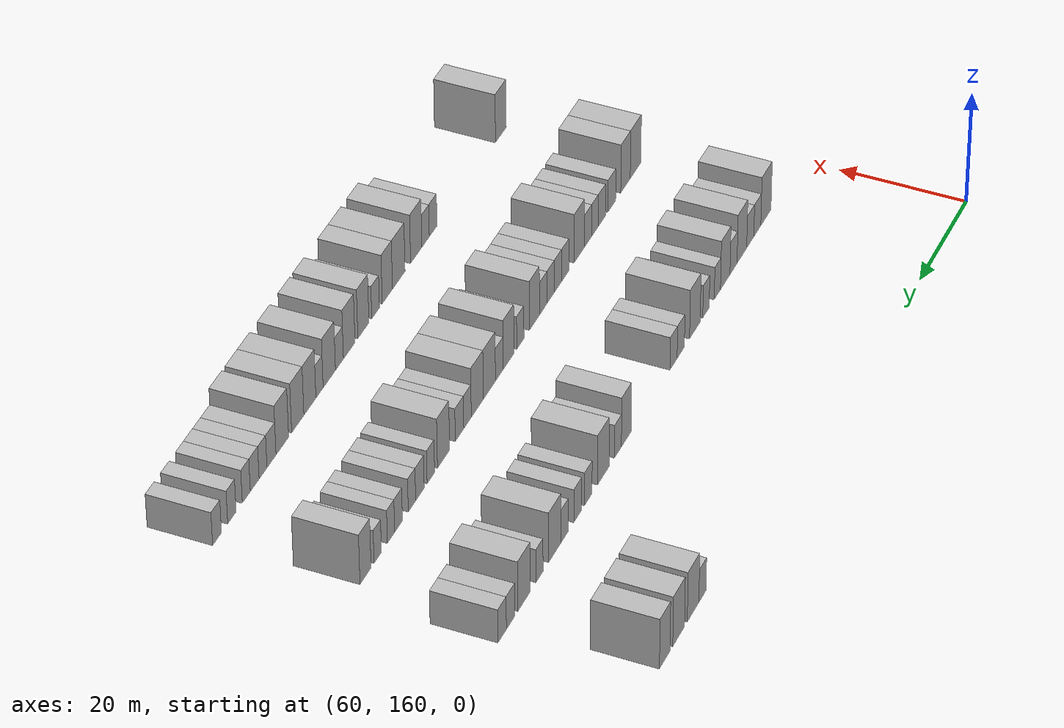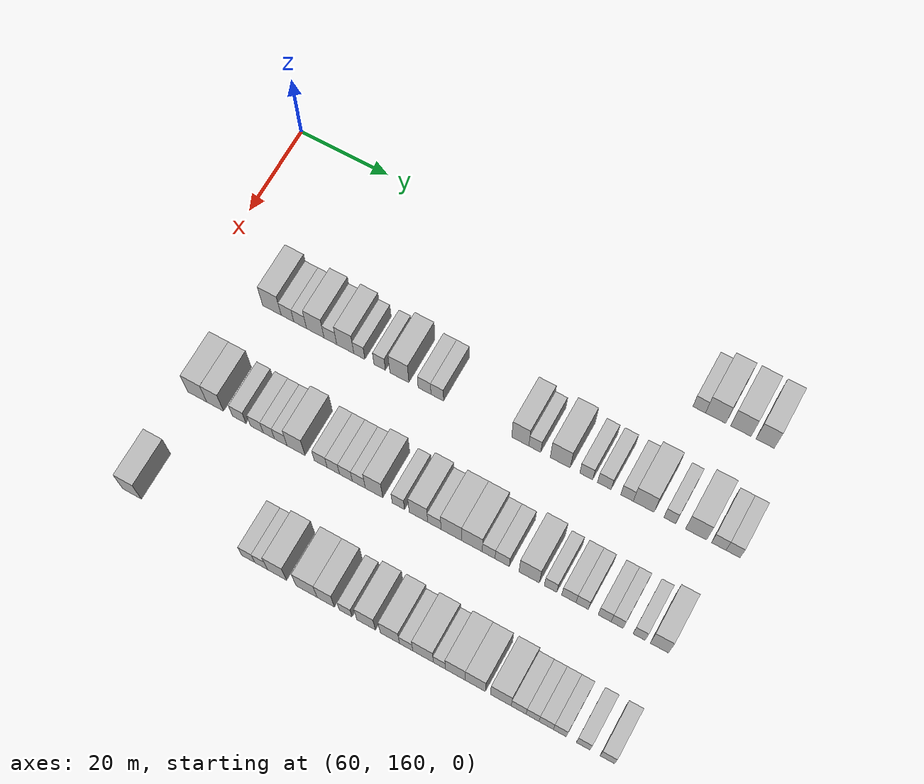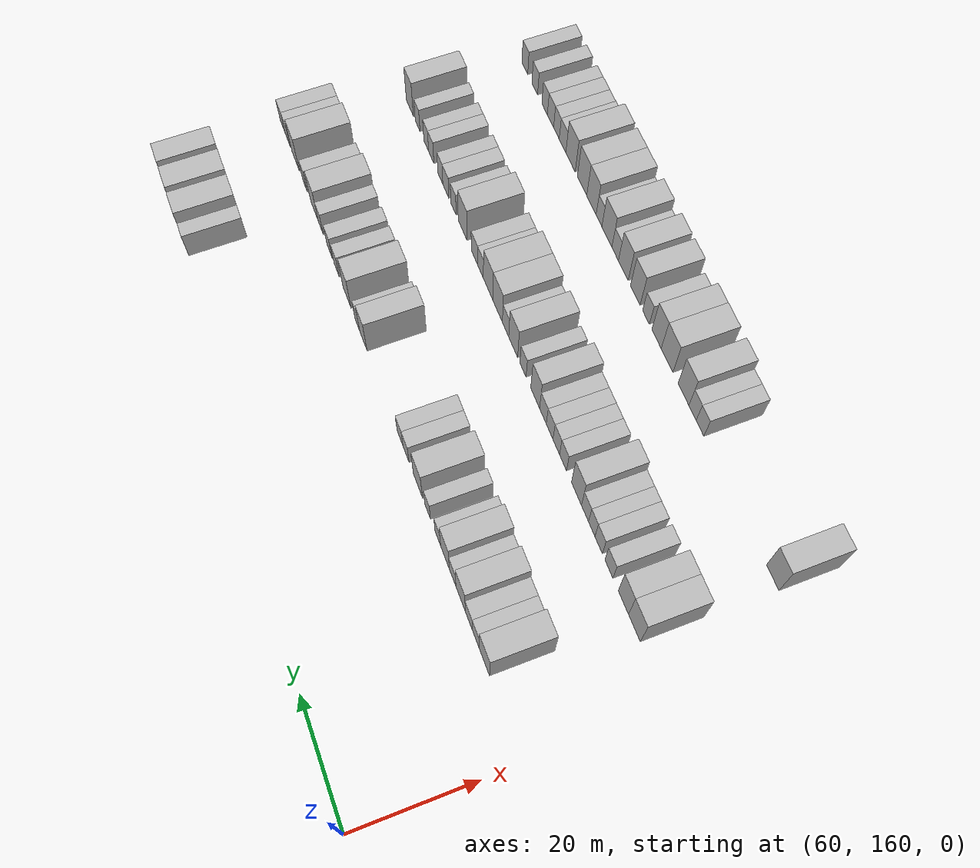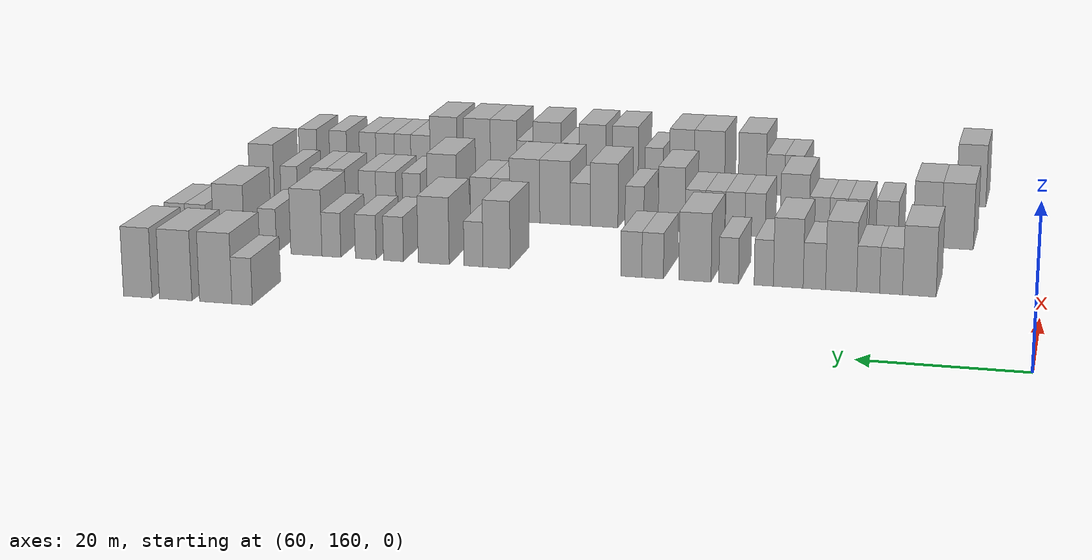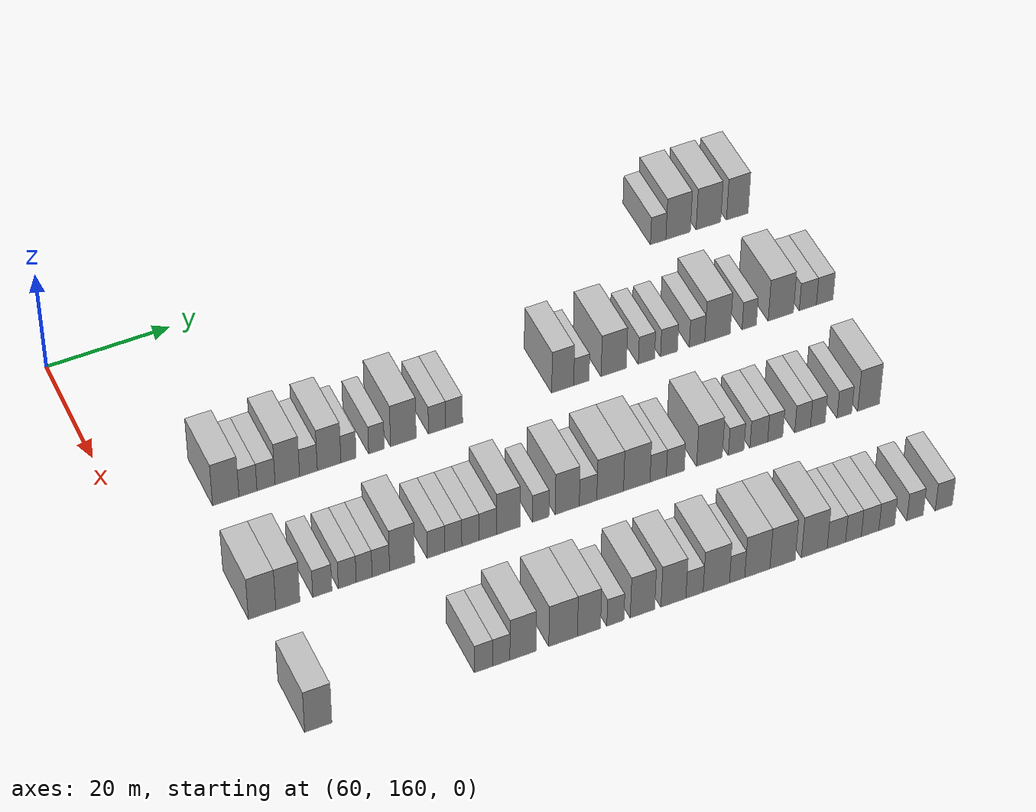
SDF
<sdf version="1.6">
 <world name="default">
  <model name="building_533">
   <static>1</static>
   <pose>69.0000 255.9101 0 0.000000 0.000000 0.000000</pose>
   <link name="link">
    <pose>0 0 3.00 0 0 0</pose>
    <collision name="collision"><geometry><box><size>10.0000 2.6577 6.0000</size></box></geometry></collision>
    <visual name="visual">
     <cast_shadows>0</cast_shadows>
     <geometry><box><size>10.0000 2.6577 6.0000</size></box></geometry>
     <material>
      <script>
       <uri>model://HANNAS_wall/materials/scripts</uri>
       <uri>model://HANNAS_wall/materials/textures</uri>
       <name>vrc/HANNAS_wall</name>
      </script>
     </material>
    </visual>
   </link>
  </model>
  <model name="building_534">
   <static>1</static>
   <pose>69.0000 259.3615 0 0.000000 0.000000 0.000000</pose>
   <link name="link">
    <pose>0 0 4.50 0 0 0</pose>
    <collision name="collision"><geometry><box><size>10.0000 4.2451 9.0000</size></box></geometry></collision>
    <visual name="visual">
     <cast_shadows>0</cast_shadows>
     <geometry><box><size>10.0000 4.2451 9.0000</size></box></geometry>
     <material>
      <script>
       <uri>model://HANNAS_wall/materials/scripts</uri>
       <uri>model://HANNAS_wall/materials/textures</uri>
       <name>vrc/HANNAS_wall</name>
      </script>
     </material>
    </visual>
   </link>
  </model>
  <model name="building_535">
   <static>1</static>
   <pose>69.0000 264.6245 0 0.000000 0.000000 0.000000</pose>
   <link name="link">
    <pose>0 0 4.50 0 0 0</pose>
    <collision name="collision"><geometry><box><size>10.0000 4.2810 9.0000</size></box></geometry></collision>
    <visual name="visual">
     <cast_shadows>0</cast_shadows>
     <geometry><box><size>10.0000 4.2810 9.0000</size></box></geometry>
     <material>
      <script>
       <uri>model://HANNAS_wall/materials/scripts</uri>
       <uri>model://HANNAS_wall/materials/textures</uri>
       <name>vrc/HANNAS_wall</name>
      </script>
     </material>
    </visual>
   </link>
  </model>
  <model name="building_536">
   <static>1</static>
   <pose>69.0000 269.6585 0 0.000000 0.000000 0.000000</pose>
   <link name="link">
    <pose>0 0 4.50 0 0 0</pose>
    <collision name="collision"><geometry><box><size>10.0000 3.7870 9.0000</size></box></geometry></collision>
    <visual name="visual">
     <cast_shadows>0</cast_shadows>
     <geometry><box><size>10.0000 3.7870 9.0000</size></box></geometry>
     <material>
      <script>
       <uri>model://HANNAS_wall/materials/scripts</uri>
       <uri>model://HANNAS_wall/materials/textures</uri>
       <name>vrc/HANNAS_wall</name>
      </script>
     </material>
    </visual>
   </link>
  </model>
  <model name="building_705">
   <static>1</static>
   <pose>91.0000 174.9958 0 0.000000 0.000000 0.000000</pose>
   <link name="link">
    <pose>0 0 4.50 0 0 0</pose>
    <collision name="collision"><geometry><box><size>10.0000 4.1649 9.0000</size></box></geometry></collision>
    <visual name="visual">
     <cast_shadows>0</cast_shadows>
     <geometry><box><size>10.0000 4.1649 9.0000</size></box></geometry>
     <material>
      <script>
       <uri>model://HANNAS_wall/materials/scripts</uri>
       <uri>model://HANNAS_wall/materials/textures</uri>
       <name>vrc/HANNAS_wall</name>
      </script>
     </material>
    </visual>
   </link>
  </model>
  <model name="building_706">
   <static>1</static>
   <pose>91.0000 178.5038 0 0.000000 0.000000 0.000000</pose>
   <link name="link">
    <pose>0 0 3.00 0 0 0</pose>
    <collision name="collision"><geometry><box><size>10.0000 2.8511 6.0000</size></box></geometry></collision>
    <visual name="visual">
     <cast_shadows>0</cast_shadows>
     <geometry><box><size>10.0000 2.8511 6.0000</size></box></geometry>
     <material>
      <script>
       <uri>model://HANNAS_wall/materials/scripts</uri>
       <uri>model://HANNAS_wall/materials/textures</uri>
       <name>vrc/HANNAS_wall</name>
      </script>
     </material>
    </visual>
   </link>
  </model>
  <model name="building_707">
   <static>1</static>
   <pose>91.0000 181.3658 0 0.000000 0.000000 0.000000</pose>
   <link name="link">
    <pose>0 0 3.00 0 0 0</pose>
    <collision name="collision"><geometry><box><size>10.0000 2.8729 6.0000</size></box></geometry></collision>
    <visual name="visual">
     <cast_shadows>0</cast_shadows>
     <geometry><box><size>10.0000 2.8729 6.0000</size></box></geometry>
     <material>
      <script>
       <uri>model://HANNAS_wall/materials/scripts</uri>
       <uri>model://HANNAS_wall/materials/textures</uri>
       <name>vrc/HANNAS_wall</name>
      </script>
     </material>
    </visual>
   </link>
  </model>
  <model name="building_708">
   <static>1</static>
   <pose>91.0000 184.7494 0 0.000000 0.000000 0.000000</pose>
   <link name="link">
    <pose>0 0 4.50 0 0 0</pose>
    <collision name="collision"><geometry><box><size>10.0000 3.8943 9.0000</size></box></geometry></collision>
    <visual name="visual">
     <cast_shadows>0</cast_shadows>
     <geometry><box><size>10.0000 3.8943 9.0000</size></box></geometry>
     <material>
      <script>
       <uri>model://HANNAS_wall/materials/scripts</uri>
       <uri>model://HANNAS_wall/materials/textures</uri>
       <name>vrc/HANNAS_wall</name>
      </script>
     </material>
    </visual>
   </link>
  </model>
  <model name="building_709">
   <static>1</static>
   <pose>91.0000 188.1133 0 0.000000 0.000000 0.000000</pose>
   <link name="link">
    <pose>0 0 3.00 0 0 0</pose>
    <collision name="collision"><geometry><box><size>10.0000 2.8335 6.0000</size></box></geometry></collision>
    <visual name="visual">
     <cast_shadows>0</cast_shadows>
     <geometry><box><size>10.0000 2.8335 6.0000</size></box></geometry>
     <material>
      <script>
       <uri>model://HANNAS_wall/materials/scripts</uri>
       <uri>model://HANNAS_wall/materials/textures</uri>
       <name>vrc/HANNAS_wall</name>
      </script>
     </material>
    </visual>
   </link>
  </model>
  <model name="building_710">
   <static>1</static>
   <pose>91.0000 191.4170 0 0.000000 0.000000 0.000000</pose>
   <link name="link">
    <pose>0 0 4.50 0 0 0</pose>
    <collision name="collision"><geometry><box><size>10.0000 3.7739 9.0000</size></box></geometry></collision>
    <visual name="visual">
     <cast_shadows>0</cast_shadows>
     <geometry><box><size>10.0000 3.7739 9.0000</size></box></geometry>
     <material>
      <script>
       <uri>model://HANNAS_wall/materials/scripts</uri>
       <uri>model://HANNAS_wall/materials/textures</uri>
       <name>vrc/HANNAS_wall</name>
      </script>
     </material>
    </visual>
   </link>
  </model>
  <model name="building_711">
   <static>1</static>
   <pose>91.0000 194.5277 0 0.000000 0.000000 0.000000</pose>
   <link name="link">
    <pose>0 0 3.00 0 0 0</pose>
    <collision name="collision"><geometry><box><size>10.0000 2.4475 6.0000</size></box></geometry></collision>
    <visual name="visual">
     <cast_shadows>0</cast_shadows>
     <geometry><box><size>10.0000 2.4475 6.0000</size></box></geometry>
     <material>
      <script>
       <uri>model://HANNAS_wall/materials/scripts</uri>
       <uri>model://HANNAS_wall/materials/textures</uri>
       <name>vrc/HANNAS_wall</name>
      </script>
     </material>
    </visual>
   </link>
  </model>
  <model name="building_712">
   <static>1</static>
   <pose>91.0000 199.0135 0 0.000000 0.000000 0.000000</pose>
   <link name="link">
    <pose>0 0 3.00 0 0 0</pose>
    <collision name="collision"><geometry><box><size>10.0000 2.5241 6.0000</size></box></geometry></collision>
    <visual name="visual">
     <cast_shadows>0</cast_shadows>
     <geometry><box><size>10.0000 2.5241 6.0000</size></box></geometry>
     <material>
      <script>
       <uri>model://HANNAS_wall/materials/scripts</uri>
       <uri>model://HANNAS_wall/materials/textures</uri>
       <name>vrc/HANNAS_wall</name>
      </script>
     </material>
    </visual>
   </link>
  </model>
  <model name="building_713">
   <static>1</static>
   <pose>91.0000 203.3489 0 0.000000 0.000000 0.000000</pose>
   <link name="link">
    <pose>0 0 4.50 0 0 0</pose>
    <collision name="collision"><geometry><box><size>10.0000 4.1468 9.0000</size></box></geometry></collision>
    <visual name="visual">
     <cast_shadows>0</cast_shadows>
     <geometry><box><size>10.0000 4.1468 9.0000</size></box></geometry>
     <material>
      <script>
       <uri>model://HANNAS_wall/materials/scripts</uri>
       <uri>model://HANNAS_wall/materials/textures</uri>
       <name>vrc/HANNAS_wall</name>
      </script>
     </material>
    </visual>
   </link>
  </model>
  <model name="building_714">
   <static>1</static>
   <pose>91.0000 208.8238 0 0.000000 0.000000 0.000000</pose>
   <link name="link">
    <pose>0 0 3.00 0 0 0</pose>
    <collision name="collision"><geometry><box><size>10.0000 2.8030 6.0000</size></box></geometry></collision>
    <visual name="visual">
     <cast_shadows>0</cast_shadows>
     <geometry><box><size>10.0000 2.8030 6.0000</size></box></geometry>
     <material>
      <script>
       <uri>model://HANNAS_wall/materials/scripts</uri>
       <uri>model://HANNAS_wall/materials/textures</uri>
       <name>vrc/HANNAS_wall</name>
      </script>
     </material>
    </visual>
   </link>
  </model>
  <model name="building_715">
   <static>1</static>
   <pose>91.0000 211.6003 0 0.000000 0.000000 0.000000</pose>
   <link name="link">
    <pose>0 0 3.00 0 0 0</pose>
    <collision name="collision"><geometry><box><size>10.0000 2.7498 6.0000</size></box></geometry></collision>
    <visual name="visual">
     <cast_shadows>0</cast_shadows>
     <geometry><box><size>10.0000 2.7498 6.0000</size></box></geometry>
     <material>
      <script>
       <uri>model://HANNAS_wall/materials/scripts</uri>
       <uri>model://HANNAS_wall/materials/textures</uri>
       <name>vrc/HANNAS_wall</name>
      </script>
     </material>
    </visual>
   </link>
  </model>
  <model name="building_716">
   <static>1</static>
   <pose>91.0000 229.4431 0 0.000000 0.000000 0.000000</pose>
   <link name="link">
    <pose>0 0 4.50 0 0 0</pose>
    <collision name="collision"><geometry><box><size>10.0000 3.6453 9.0000</size></box></geometry></collision>
    <visual name="visual">
     <cast_shadows>0</cast_shadows>
     <geometry><box><size>10.0000 3.6453 9.0000</size></box></geometry>
     <material>
      <script>
       <uri>model://HANNAS_wall/materials/scripts</uri>
       <uri>model://HANNAS_wall/materials/textures</uri>
       <name>vrc/HANNAS_wall</name>
      </script>
     </material>
    </visual>
   </link>
  </model>
  <model name="building_717">
   <static>1</static>
   <pose>91.0000 232.5391 0 0.000000 0.000000 0.000000</pose>
   <link name="link">
    <pose>0 0 3.00 0 0 0</pose>
    <collision name="collision"><geometry><box><size>10.0000 2.5468 6.0000</size></box></geometry></collision>
    <visual name="visual">
     <cast_shadows>0</cast_shadows>
     <geometry><box><size>10.0000 2.5468 6.0000</size></box></geometry>
     <material>
      <script>
       <uri>model://HANNAS_wall/materials/scripts</uri>
       <uri>model://HANNAS_wall/materials/textures</uri>
       <name>vrc/HANNAS_wall</name>
      </script>
     </material>
    </visual>
   </link>
  </model>
  <model name="building_718">
   <static>1</static>
   <pose>91.0000 237.9190 0 0.000000 0.000000 0.000000</pose>
   <link name="link">
    <pose>0 0 4.50 0 0 0</pose>
    <collision name="collision"><geometry><box><size>10.0000 4.2130 9.0000</size></box></geometry></collision>
    <visual name="visual">
     <cast_shadows>0</cast_shadows>
     <geometry><box><size>10.0000 4.2130 9.0000</size></box></geometry>
     <material>
      <script>
       <uri>model://HANNAS_wall/materials/scripts</uri>
       <uri>model://HANNAS_wall/materials/textures</uri>
       <name>vrc/HANNAS_wall</name>
      </script>
     </material>
    </visual>
   </link>
  </model>
  <model name="building_719">
   <static>1</static>
   <pose>91.0000 243.3892 0 0.000000 0.000000 0.000000</pose>
   <link name="link">
    <pose>0 0 3.00 0 0 0</pose>
    <collision name="collision"><geometry><box><size>10.0000 2.7273 6.0000</size></box></geometry></collision>
    <visual name="visual">
     <cast_shadows>0</cast_shadows>
     <geometry><box><size>10.0000 2.7273 6.0000</size></box></geometry>
     <material>
      <script>
       <uri>model://HANNAS_wall/materials/scripts</uri>
       <uri>model://HANNAS_wall/materials/textures</uri>
       <name>vrc/HANNAS_wall</name>
      </script>
     </material>
    </visual>
   </link>
  </model>
  <model name="building_720">
   <static>1</static>
   <pose>91.0000 247.1819 0 0.000000 0.000000 0.000000</pose>
   <link name="link">
    <pose>0 0 3.00 0 0 0</pose>
    <collision name="collision"><geometry><box><size>10.0000 2.8580 6.0000</size></box></geometry></collision>
    <visual name="visual">
     <cast_shadows>0</cast_shadows>
     <geometry><box><size>10.0000 2.8580 6.0000</size></box></geometry>
     <material>
      <script>
       <uri>model://HANNAS_wall/materials/scripts</uri>
       <uri>model://HANNAS_wall/materials/textures</uri>
       <name>vrc/HANNAS_wall</name>
      </script>
     </material>
    </visual>
   </link>
  </model>
  <model name="building_721">
   <static>1</static>
   <pose>91.0000 251.9190 0 0.000000 0.000000 0.000000</pose>
   <link name="link">
    <pose>0 0 3.00 0 0 0</pose>
    <collision name="collision"><geometry><box><size>10.0000 2.6163 6.0000</size></box></geometry></collision>
    <visual name="visual">
     <cast_shadows>0</cast_shadows>
     <geometry><box><size>10.0000 2.6163 6.0000</size></box></geometry>
     <material>
      <script>
       <uri>model://HANNAS_wall/materials/scripts</uri>
       <uri>model://HANNAS_wall/materials/textures</uri>
       <name>vrc/HANNAS_wall</name>
      </script>
     </material>
    </visual>
   </link>
  </model>
  <model name="building_722">
   <static>1</static>
   <pose>91.0000 255.3890 0 0.000000 0.000000 0.000000</pose>
   <link name="link">
    <pose>0 0 4.50 0 0 0</pose>
    <collision name="collision"><geometry><box><size>10.0000 4.3237 9.0000</size></box></geometry></collision>
    <visual name="visual">
     <cast_shadows>0</cast_shadows>
     <geometry><box><size>10.0000 4.3237 9.0000</size></box></geometry>
     <material>
      <script>
       <uri>model://HANNAS_wall/materials/scripts</uri>
       <uri>model://HANNAS_wall/materials/textures</uri>
       <name>vrc/HANNAS_wall</name>
      </script>
     </material>
    </visual>
   </link>
  </model>
  <model name="building_723">
   <static>1</static>
   <pose>91.0000 260.7830 0 0.000000 0.000000 0.000000</pose>
   <link name="link">
    <pose>0 0 3.00 0 0 0</pose>
    <collision name="collision"><geometry><box><size>10.0000 2.4643 6.0000</size></box></geometry></collision>
    <visual name="visual">
     <cast_shadows>0</cast_shadows>
     <geometry><box><size>10.0000 2.4643 6.0000</size></box></geometry>
     <material>
      <script>
       <uri>model://HANNAS_wall/materials/scripts</uri>
       <uri>model://HANNAS_wall/materials/textures</uri>
       <name>vrc/HANNAS_wall</name>
      </script>
     </material>
    </visual>
   </link>
  </model>
  <model name="building_724">
   <static>1</static>
   <pose>91.0000 266.1793 0 0.000000 0.000000 0.000000</pose>
   <link name="link">
    <pose>0 0 4.50 0 0 0</pose>
    <collision name="collision"><geometry><box><size>10.0000 4.3281 9.0000</size></box></geometry></collision>
    <visual name="visual">
     <cast_shadows>0</cast_shadows>
     <geometry><box><size>10.0000 4.3281 9.0000</size></box></geometry>
     <material>
      <script>
       <uri>model://HANNAS_wall/materials/scripts</uri>
       <uri>model://HANNAS_wall/materials/textures</uri>
       <name>vrc/HANNAS_wall</name>
      </script>
     </material>
    </visual>
   </link>
  </model>
  <model name="building_725">
   <static>1</static>
   <pose>91.0000 270.8159 0 0.000000 0.000000 0.000000</pose>
   <link name="link">
    <pose>0 0 3.00 0 0 0</pose>
    <collision name="collision"><geometry><box><size>10.0000 2.9451 6.0000</size></box></geometry></collision>
    <visual name="visual">
     <cast_shadows>0</cast_shadows>
     <geometry><box><size>10.0000 2.9451 6.0000</size></box></geometry>
     <material>
      <script>
       <uri>model://HANNAS_wall/materials/scripts</uri>
       <uri>model://HANNAS_wall/materials/textures</uri>
       <name>vrc/HANNAS_wall</name>
      </script>
     </material>
    </visual>
   </link>
  </model>
  <model name="building_726">
   <static>1</static>
   <pose>91.0000 273.7205 0 0.000000 0.000000 0.000000</pose>
   <link name="link">
    <pose>0 0 3.00 0 0 0</pose>
    <collision name="collision"><geometry><box><size>10.0000 2.8641 6.0000</size></box></geometry></collision>
    <visual name="visual">
     <cast_shadows>0</cast_shadows>
     <geometry><box><size>10.0000 2.8641 6.0000</size></box></geometry>
     <material>
      <script>
       <uri>model://HANNAS_wall/materials/scripts</uri>
       <uri>model://HANNAS_wall/materials/textures</uri>
       <name>vrc/HANNAS_wall</name>
      </script>
     </material>
    </visual>
   </link>
  </model>
  <model name="building_885">
   <static>1</static>
   <pose>113.0000 171.9332 0 0.000000 0.000000 0.000000</pose>
   <link name="link">
    <pose>0 0 4.50 0 0 0</pose>
    <collision name="collision"><geometry><box><size>10.0000 4.2352 9.0000</size></box></geometry></collision>
    <visual name="visual">
     <cast_shadows>0</cast_shadows>
     <geometry><box><size>10.0000 4.2352 9.0000</size></box></geometry>
     <material>
      <script>
       <uri>model://HANNAS_wall/materials/scripts</uri>
       <uri>model://HANNAS_wall/materials/textures</uri>
       <name>vrc/HANNAS_wall</name>
      </script>
     </material>
    </visual>
   </link>
  </model>
  <model name="building_886">
   <static>1</static>
   <pose>113.0000 175.9162 0 0.000000 0.000000 0.000000</pose>
   <link name="link">
    <pose>0 0 4.50 0 0 0</pose>
    <collision name="collision"><geometry><box><size>10.0000 3.7307 9.0000</size></box></geometry></collision>
    <visual name="visual">
     <cast_shadows>0</cast_shadows>
     <geometry><box><size>10.0000 3.7307 9.0000</size></box></geometry>
     <material>
      <script>
       <uri>model://HANNAS_wall/materials/scripts</uri>
       <uri>model://HANNAS_wall/materials/textures</uri>
       <name>vrc/HANNAS_wall</name>
      </script>
     </material>
    </visual>
   </link>
  </model>
  <model name="building_887">
   <static>1</static>
   <pose>113.0000 181.2693 0 0.000000 0.000000 0.000000</pose>
   <link name="link">
    <pose>0 0 3.00 0 0 0</pose>
    <collision name="collision"><geometry><box><size>10.0000 2.9754 6.0000</size></box></geometry></collision>
    <visual name="visual">
     <cast_shadows>0</cast_shadows>
     <geometry><box><size>10.0000 2.9754 6.0000</size></box></geometry>
     <material>
      <script>
       <uri>model://HANNAS_wall/materials/scripts</uri>
       <uri>model://HANNAS_wall/materials/textures</uri>
       <name>vrc/HANNAS_wall</name>
      </script>
     </material>
    </visual>
   </link>
  </model>
  <model name="building_888">
   <static>1</static>
   <pose>113.0000 185.1561 0 0.000000 0.000000 0.000000</pose>
   <link name="link">
    <pose>0 0 3.00 0 0 0</pose>
    <collision name="collision"><geometry><box><size>10.0000 2.7983 6.0000</size></box></geometry></collision>
    <visual name="visual">
     <cast_shadows>0</cast_shadows>
     <geometry><box><size>10.0000 2.7983 6.0000</size></box></geometry>
     <material>
      <script>
       <uri>model://HANNAS_wall/materials/scripts</uri>
       <uri>model://HANNAS_wall/materials/textures</uri>
       <name>vrc/HANNAS_wall</name>
      </script>
     </material>
    </visual>
   </link>
  </model>
  <model name="building_889">
   <static>1</static>
   <pose>113.0000 187.7938 0 0.000000 0.000000 0.000000</pose>
   <link name="link">
    <pose>0 0 3.00 0 0 0</pose>
    <collision name="collision"><geometry><box><size>10.0000 2.4770 6.0000</size></box></geometry></collision>
    <visual name="visual">
     <cast_shadows>0</cast_shadows>
     <geometry><box><size>10.0000 2.4770 6.0000</size></box></geometry>
     <material>
      <script>
       <uri>model://HANNAS_wall/materials/scripts</uri>
       <uri>model://HANNAS_wall/materials/textures</uri>
       <name>vrc/HANNAS_wall</name>
      </script>
     </material>
    </visual>
   </link>
  </model>
  <model name="building_890">
   <static>1</static>
   <pose>113.0000 190.4042 0 0.000000 0.000000 0.000000</pose>
   <link name="link">
    <pose>0 0 3.00 0 0 0</pose>
    <collision name="collision"><geometry><box><size>10.0000 2.7436 6.0000</size></box></geometry></collision>
    <visual name="visual">
     <cast_shadows>0</cast_shadows>
     <geometry><box><size>10.0000 2.7436 6.0000</size></box></geometry>
     <material>
      <script>
       <uri>model://HANNAS_wall/materials/scripts</uri>
       <uri>model://HANNAS_wall/materials/textures</uri>
       <name>vrc/HANNAS_wall</name>
      </script>
     </material>
    </visual>
   </link>
  </model>
  <model name="building_891">
   <static>1</static>
   <pose>113.0000 193.7367 0 0.000000 0.000000 0.000000</pose>
   <link name="link">
    <pose>0 0 4.50 0 0 0</pose>
    <collision name="collision"><geometry><box><size>10.0000 3.9214 9.0000</size></box></geometry></collision>
    <visual name="visual">
     <cast_shadows>0</cast_shadows>
     <geometry><box><size>10.0000 3.9214 9.0000</size></box></geometry>
     <material>
      <script>
       <uri>model://HANNAS_wall/materials/scripts</uri>
       <uri>model://HANNAS_wall/materials/textures</uri>
       <name>vrc/HANNAS_wall</name>
      </script>
     </material>
    </visual>
   </link>
  </model>
  <model name="building_892">
   <static>1</static>
   <pose>113.0000 199.0979 0 0.000000 0.000000 0.000000</pose>
   <link name="link">
    <pose>0 0 3.00 0 0 0</pose>
    <collision name="collision"><geometry><box><size>10.0000 2.8010 6.0000</size></box></geometry></collision>
    <visual name="visual">
     <cast_shadows>0</cast_shadows>
     <geometry><box><size>10.0000 2.8010 6.0000</size></box></geometry>
     <material>
      <script>
       <uri>model://HANNAS_wall/materials/scripts</uri>
       <uri>model://HANNAS_wall/materials/textures</uri>
       <name>vrc/HANNAS_wall</name>
      </script>
     </material>
    </visual>
   </link>
  </model>
  <model name="building_893">
   <static>1</static>
   <pose>113.0000 201.8411 0 0.000000 0.000000 0.000000</pose>
   <link name="link">
    <pose>0 0 3.00 0 0 0</pose>
    <collision name="collision"><geometry><box><size>10.0000 2.6853 6.0000</size></box></geometry></collision>
    <visual name="visual">
     <cast_shadows>0</cast_shadows>
     <geometry><box><size>10.0000 2.6853 6.0000</size></box></geometry>
     <material>
      <script>
       <uri>model://HANNAS_wall/materials/scripts</uri>
       <uri>model://HANNAS_wall/materials/textures</uri>
       <name>vrc/HANNAS_wall</name>
      </script>
     </material>
    </visual>
   </link>
  </model>
  <model name="building_894">
   <static>1</static>
   <pose>113.0000 204.5632 0 0.000000 0.000000 0.000000</pose>
   <link name="link">
    <pose>0 0 3.00 0 0 0</pose>
    <collision name="collision"><geometry><box><size>10.0000 2.7590 6.0000</size></box></geometry></collision>
    <visual name="visual">
     <cast_shadows>0</cast_shadows>
     <geometry><box><size>10.0000 2.7590 6.0000</size></box></geometry>
     <material>
      <script>
       <uri>model://HANNAS_wall/materials/scripts</uri>
       <uri>model://HANNAS_wall/materials/textures</uri>
       <name>vrc/HANNAS_wall</name>
      </script>
     </material>
    </visual>
   </link>
  </model>
  <model name="building_895">
   <static>1</static>
   <pose>113.0000 207.3411 0 0.000000 0.000000 0.000000</pose>
   <link name="link">
    <pose>0 0 3.00 0 0 0</pose>
    <collision name="collision"><geometry><box><size>10.0000 2.7967 6.0000</size></box></geometry></collision>
    <visual name="visual">
     <cast_shadows>0</cast_shadows>
     <geometry><box><size>10.0000 2.7967 6.0000</size></box></geometry>
     <material>
      <script>
       <uri>model://HANNAS_wall/materials/scripts</uri>
       <uri>model://HANNAS_wall/materials/textures</uri>
       <name>vrc/HANNAS_wall</name>
      </script>
     </material>
    </visual>
   </link>
  </model>
  <model name="building_896">
   <static>1</static>
   <pose>113.0000 210.6074 0 0.000000 0.000000 0.000000</pose>
   <link name="link">
    <pose>0 0 4.50 0 0 0</pose>
    <collision name="collision"><geometry><box><size>10.0000 3.7359 9.0000</size></box></geometry></collision>
    <visual name="visual">
     <cast_shadows>0</cast_shadows>
     <geometry><box><size>10.0000 3.7359 9.0000</size></box></geometry>
     <material>
      <script>
       <uri>model://HANNAS_wall/materials/scripts</uri>
       <uri>model://HANNAS_wall/materials/textures</uri>
       <name>vrc/HANNAS_wall</name>
      </script>
     </material>
    </visual>
   </link>
  </model>
  <model name="building_897">
   <static>1</static>
   <pose>113.0000 215.7934 0 0.000000 0.000000 0.000000</pose>
   <link name="link">
    <pose>0 0 3.00 0 0 0</pose>
    <collision name="collision"><geometry><box><size>10.0000 2.6360 6.0000</size></box></geometry></collision>
    <visual name="visual">
     <cast_shadows>0</cast_shadows>
     <geometry><box><size>10.0000 2.6360 6.0000</size></box></geometry>
     <material>
      <script>
       <uri>model://HANNAS_wall/materials/scripts</uri>
       <uri>model://HANNAS_wall/materials/textures</uri>
       <name>vrc/HANNAS_wall</name>
      </script>
     </material>
    </visual>
   </link>
  </model>
  <model name="building_898">
   <static>1</static>
   <pose>113.0000 220.0562 0 0.000000 0.000000 0.000000</pose>
   <link name="link">
    <pose>0 0 4.50 0 0 0</pose>
    <collision name="collision"><geometry><box><size>10.0000 3.8896 9.0000</size></box></geometry></collision>
    <visual name="visual">
     <cast_shadows>0</cast_shadows>
     <geometry><box><size>10.0000 3.8896 9.0000</size></box></geometry>
     <material>
      <script>
       <uri>model://HANNAS_wall/materials/scripts</uri>
       <uri>model://HANNAS_wall/materials/textures</uri>
       <name>vrc/HANNAS_wall</name>
      </script>
     </material>
    </visual>
   </link>
  </model>
  <model name="building_899">
   <static>1</static>
   <pose>113.0000 223.4163 0 0.000000 0.000000 0.000000</pose>
   <link name="link">
    <pose>0 0 3.00 0 0 0</pose>
    <collision name="collision"><geometry><box><size>10.0000 2.8306 6.0000</size></box></geometry></collision>
    <visual name="visual">
     <cast_shadows>0</cast_shadows>
     <geometry><box><size>10.0000 2.8306 6.0000</size></box></geometry>
     <material>
      <script>
       <uri>model://HANNAS_wall/materials/scripts</uri>
       <uri>model://HANNAS_wall/materials/textures</uri>
       <name>vrc/HANNAS_wall</name>
      </script>
     </material>
    </visual>
   </link>
  </model>
  <model name="building_900">
   <static>1</static>
   <pose>113.0000 227.0017 0 0.000000 0.000000 0.000000</pose>
   <link name="link">
    <pose>0 0 4.50 0 0 0</pose>
    <collision name="collision"><geometry><box><size>10.0000 4.3402 9.0000</size></box></geometry></collision>
    <visual name="visual">
     <cast_shadows>0</cast_shadows>
     <geometry><box><size>10.0000 4.3402 9.0000</size></box></geometry>
     <material>
      <script>
       <uri>model://HANNAS_wall/materials/scripts</uri>
       <uri>model://HANNAS_wall/materials/textures</uri>
       <name>vrc/HANNAS_wall</name>
      </script>
     </material>
    </visual>
   </link>
  </model>
  <model name="building_901">
   <static>1</static>
   <pose>113.0000 231.3302 0 0.000000 0.000000 0.000000</pose>
   <link name="link">
    <pose>0 0 4.50 0 0 0</pose>
    <collision name="collision"><geometry><box><size>10.0000 4.3169 9.0000</size></box></geometry></collision>
    <visual name="visual">
     <cast_shadows>0</cast_shadows>
     <geometry><box><size>10.0000 4.3169 9.0000</size></box></geometry>
     <material>
      <script>
       <uri>model://HANNAS_wall/materials/scripts</uri>
       <uri>model://HANNAS_wall/materials/textures</uri>
       <name>vrc/HANNAS_wall</name>
      </script>
     </material>
    </visual>
   </link>
  </model>
  <model name="building_902">
   <static>1</static>
   <pose>113.0000 234.8217 0 0.000000 0.000000 0.000000</pose>
   <link name="link">
    <pose>0 0 3.00 0 0 0</pose>
    <collision name="collision"><geometry><box><size>10.0000 2.6661 6.0000</size></box></geometry></collision>
    <visual name="visual">
     <cast_shadows>0</cast_shadows>
     <geometry><box><size>10.0000 2.6661 6.0000</size></box></geometry>
     <material>
      <script>
       <uri>model://HANNAS_wall/materials/scripts</uri>
       <uri>model://HANNAS_wall/materials/textures</uri>
       <name>vrc/HANNAS_wall</name>
      </script>
     </material>
    </visual>
   </link>
  </model>
  <model name="building_903">
   <static>1</static>
   <pose>113.0000 237.6411 0 0.000000 0.000000 0.000000</pose>
   <link name="link">
    <pose>0 0 3.00 0 0 0</pose>
    <collision name="collision"><geometry><box><size>10.0000 2.9727 6.0000</size></box></geometry></collision>
    <visual name="visual">
     <cast_shadows>0</cast_shadows>
     <geometry><box><size>10.0000 2.9727 6.0000</size></box></geometry>
     <material>
      <script>
       <uri>model://HANNAS_wall/materials/scripts</uri>
       <uri>model://HANNAS_wall/materials/textures</uri>
       <name>vrc/HANNAS_wall</name>
      </script>
     </material>
    </visual>
   </link>
  </model>
  <model name="building_904">
   <static>1</static>
   <pose>113.0000 243.2428 0 0.000000 0.000000 0.000000</pose>
   <link name="link">
    <pose>0 0 4.50 0 0 0</pose>
    <collision name="collision"><geometry><box><size>10.0000 4.2307 9.0000</size></box></geometry></collision>
    <visual name="visual">
     <cast_shadows>0</cast_shadows>
     <geometry><box><size>10.0000 4.2307 9.0000</size></box></geometry>
     <material>
      <script>
       <uri>model://HANNAS_wall/materials/scripts</uri>
       <uri>model://HANNAS_wall/materials/textures</uri>
       <name>vrc/HANNAS_wall</name>
      </script>
     </material>
    </visual>
   </link>
  </model>
  <model name="building_905">
   <static>1</static>
   <pose>113.0000 247.6502 0 0.000000 0.000000 0.000000</pose>
   <link name="link">
    <pose>0 0 3.00 0 0 0</pose>
    <collision name="collision"><geometry><box><size>10.0000 2.5842 6.0000</size></box></geometry></collision>
    <visual name="visual">
     <cast_shadows>0</cast_shadows>
     <geometry><box><size>10.0000 2.5842 6.0000</size></box></geometry>
     <material>
      <script>
       <uri>model://HANNAS_wall/materials/scripts</uri>
       <uri>model://HANNAS_wall/materials/textures</uri>
       <name>vrc/HANNAS_wall</name>
      </script>
     </material>
    </visual>
   </link>
  </model>
  <model name="building_906">
   <static>1</static>
   <pose>113.0000 251.4118 0 0.000000 0.000000 0.000000</pose>
   <link name="link">
    <pose>0 0 3.00 0 0 0</pose>
    <collision name="collision"><geometry><box><size>10.0000 2.9391 6.0000</size></box></geometry></collision>
    <visual name="visual">
     <cast_shadows>0</cast_shadows>
     <geometry><box><size>10.0000 2.9391 6.0000</size></box></geometry>
     <material>
      <script>
       <uri>model://HANNAS_wall/materials/scripts</uri>
       <uri>model://HANNAS_wall/materials/textures</uri>
       <name>vrc/HANNAS_wall</name>
      </script>
     </material>
    </visual>
   </link>
  </model>
  <model name="building_907">
   <static>1</static>
   <pose>113.0000 254.1397 0 0.000000 0.000000 0.000000</pose>
   <link name="link">
    <pose>0 0 3.00 0 0 0</pose>
    <collision name="collision"><geometry><box><size>10.0000 2.5167 6.0000</size></box></geometry></collision>
    <visual name="visual">
     <cast_shadows>0</cast_shadows>
     <geometry><box><size>10.0000 2.5167 6.0000</size></box></geometry>
     <material>
      <script>
       <uri>model://HANNAS_wall/materials/scripts</uri>
       <uri>model://HANNAS_wall/materials/textures</uri>
       <name>vrc/HANNAS_wall</name>
      </script>
     </material>
    </visual>
   </link>
  </model>
  <model name="building_908">
   <static>1</static>
   <pose>113.0000 258.7116 0 0.000000 0.000000 0.000000</pose>
   <link name="link">
    <pose>0 0 3.00 0 0 0</pose>
    <collision name="collision"><geometry><box><size>10.0000 2.6270 6.0000</size></box></geometry></collision>
    <visual name="visual">
     <cast_shadows>0</cast_shadows>
     <geometry><box><size>10.0000 2.6270 6.0000</size></box></geometry>
     <material>
      <script>
       <uri>model://HANNAS_wall/materials/scripts</uri>
       <uri>model://HANNAS_wall/materials/textures</uri>
       <name>vrc/HANNAS_wall</name>
      </script>
     </material>
    </visual>
   </link>
  </model>
  <model name="building_909">
   <static>1</static>
   <pose>113.0000 261.2547 0 0.000000 0.000000 0.000000</pose>
   <link name="link">
    <pose>0 0 3.00 0 0 0</pose>
    <collision name="collision"><geometry><box><size>10.0000 2.4593 6.0000</size></box></geometry></collision>
    <visual name="visual">
     <cast_shadows>0</cast_shadows>
     <geometry><box><size>10.0000 2.4593 6.0000</size></box></geometry>
     <material>
      <script>
       <uri>model://HANNAS_wall/materials/scripts</uri>
       <uri>model://HANNAS_wall/materials/textures</uri>
       <name>vrc/HANNAS_wall</name>
      </script>
     </material>
    </visual>
   </link>
  </model>
  <model name="building_910">
   <static>1</static>
   <pose>113.0000 265.7158 0 0.000000 0.000000 0.000000</pose>
   <link name="link">
    <pose>0 0 3.00 0 0 0</pose>
    <collision name="collision"><geometry><box><size>10.0000 2.4629 6.0000</size></box></geometry></collision>
    <visual name="visual">
     <cast_shadows>0</cast_shadows>
     <geometry><box><size>10.0000 2.4629 6.0000</size></box></geometry>
     <material>
      <script>
       <uri>model://HANNAS_wall/materials/scripts</uri>
       <uri>model://HANNAS_wall/materials/textures</uri>
       <name>vrc/HANNAS_wall</name>
      </script>
     </material>
    </visual>
   </link>
  </model>
  <model name="building_911">
   <static>1</static>
   <pose>113.0000 269.7841 0 0.000000 0.000000 0.000000</pose>
   <link name="link">
    <pose>0 0 4.50 0 0 0</pose>
    <collision name="collision"><geometry><box><size>10.0000 3.6737 9.0000</size></box></geometry></collision>
    <visual name="visual">
     <cast_shadows>0</cast_shadows>
     <geometry><box><size>10.0000 3.6737 9.0000</size></box></geometry>
     <material>
      <script>
       <uri>model://HANNAS_wall/materials/scripts</uri>
       <uri>model://HANNAS_wall/materials/textures</uri>
       <name>vrc/HANNAS_wall</name>
      </script>
     </material>
    </visual>
   </link>
  </model>
  <model name="building_1079">
   <static>1</static>
   <pose>135.0000 171.5870 0 0.000000 0.000000 0.000000</pose>
   <link name="link">
    <pose>0 0 4.50 0 0 0</pose>
    <collision name="collision"><geometry><box><size>10.0000 4.1153 9.0000</size></box></geometry></collision>
    <visual name="visual">
     <cast_shadows>0</cast_shadows>
     <geometry><box><size>10.0000 4.1153 9.0000</size></box></geometry>
     <material>
      <script>
       <uri>model://HANNAS_wall/materials/scripts</uri>
       <uri>model://HANNAS_wall/materials/textures</uri>
       <name>vrc/HANNAS_wall</name>
      </script>
     </material>
    </visual>
   </link>
  </model>
  <model name="building_1080">
   <static>1</static>
   <pose>135.0000 196.8651 0 0.000000 0.000000 0.000000</pose>
   <link name="link">
    <pose>0 0 3.00 0 0 0</pose>
    <collision name="collision"><geometry><box><size>10.0000 2.8137 6.0000</size></box></geometry></collision>
    <visual name="visual">
     <cast_shadows>0</cast_shadows>
     <geometry><box><size>10.0000 2.8137 6.0000</size></box></geometry>
     <material>
      <script>
       <uri>model://HANNAS_wall/materials/scripts</uri>
       <uri>model://HANNAS_wall/materials/textures</uri>
       <name>vrc/HANNAS_wall</name>
      </script>
     </material>
    </visual>
   </link>
  </model>
  <model name="building_1081">
   <static>1</static>
   <pose>135.0000 199.6198 0 0.000000 0.000000 0.000000</pose>
   <link name="link">
    <pose>0 0 3.00 0 0 0</pose>
    <collision name="collision"><geometry><box><size>10.0000 2.6958 6.0000</size></box></geometry></collision>
    <visual name="visual">
     <cast_shadows>0</cast_shadows>
     <geometry><box><size>10.0000 2.6958 6.0000</size></box></geometry>
     <material>
      <script>
       <uri>model://HANNAS_wall/materials/scripts</uri>
       <uri>model://HANNAS_wall/materials/textures</uri>
       <name>vrc/HANNAS_wall</name>
      </script>
     </material>
    </visual>
   </link>
  </model>
  <model name="building_1082">
   <static>1</static>
   <pose>135.0000 203.0007 0 0.000000 0.000000 0.000000</pose>
   <link name="link">
    <pose>0 0 4.50 0 0 0</pose>
    <collision name="collision"><geometry><box><size>10.0000 4.0660 9.0000</size></box></geometry></collision>
    <visual name="visual">
     <cast_shadows>0</cast_shadows>
     <geometry><box><size>10.0000 4.0660 9.0000</size></box></geometry>
     <material>
      <script>
       <uri>model://HANNAS_wall/materials/scripts</uri>
       <uri>model://HANNAS_wall/materials/textures</uri>
       <name>vrc/HANNAS_wall</name>
      </script>
     </material>
    </visual>
   </link>
  </model>
  <model name="building_1083">
   <static>1</static>
   <pose>135.0000 209.2757 0 0.000000 0.000000 0.000000</pose>
   <link name="link">
    <pose>0 0 4.50 0 0 0</pose>
    <collision name="collision"><geometry><box><size>10.0000 4.4841 9.0000</size></box></geometry></collision>
    <visual name="visual">
     <cast_shadows>0</cast_shadows>
     <geometry><box><size>10.0000 4.4841 9.0000</size></box></geometry>
     <material>
      <script>
       <uri>model://HANNAS_wall/materials/scripts</uri>
       <uri>model://HANNAS_wall/materials/textures</uri>
       <name>vrc/HANNAS_wall</name>
      </script>
     </material>
    </visual>
   </link>
  </model>
  <model name="building_1084">
   <static>1</static>
   <pose>135.0000 213.3349 0 0.000000 0.000000 0.000000</pose>
   <link name="link">
    <pose>0 0 4.50 0 0 0</pose>
    <collision name="collision"><geometry><box><size>10.0000 3.6342 9.0000</size></box></geometry></collision>
    <visual name="visual">
     <cast_shadows>0</cast_shadows>
     <geometry><box><size>10.0000 3.6342 9.0000</size></box></geometry>
     <material>
      <script>
       <uri>model://HANNAS_wall/materials/scripts</uri>
       <uri>model://HANNAS_wall/materials/textures</uri>
       <name>vrc/HANNAS_wall</name>
      </script>
     </material>
    </visual>
   </link>
  </model>
  <model name="building_1085">
   <static>1</static>
   <pose>135.0000 217.5004 0 0.000000 0.000000 0.000000</pose>
   <link name="link">
    <pose>0 0 3.00 0 0 0</pose>
    <collision name="collision"><geometry><box><size>10.0000 2.6967 6.0000</size></box></geometry></collision>
    <visual name="visual">
     <cast_shadows>0</cast_shadows>
     <geometry><box><size>10.0000 2.6967 6.0000</size></box></geometry>
     <material>
      <script>
       <uri>model://HANNAS_wall/materials/scripts</uri>
       <uri>model://HANNAS_wall/materials/textures</uri>
       <name>vrc/HANNAS_wall</name>
      </script>
     </material>
    </visual>
   </link>
  </model>
  <model name="building_1086">
   <static>1</static>
   <pose>135.0000 221.7855 0 0.000000 0.000000 0.000000</pose>
   <link name="link">
    <pose>0 0 4.50 0 0 0</pose>
    <collision name="collision"><geometry><box><size>10.0000 3.8736 9.0000</size></box></geometry></collision>
    <visual name="visual">
     <cast_shadows>0</cast_shadows>
     <geometry><box><size>10.0000 3.8736 9.0000</size></box></geometry>
     <material>
      <script>
       <uri>model://HANNAS_wall/materials/scripts</uri>
       <uri>model://HANNAS_wall/materials/textures</uri>
       <name>vrc/HANNAS_wall</name>
      </script>
     </material>
    </visual>
   </link>
  </model>
  <model name="building_1087">
   <static>1</static>
   <pose>135.0000 226.7161 0 0.000000 0.000000 0.000000</pose>
   <link name="link">
    <pose>0 0 4.50 0 0 0</pose>
    <collision name="collision"><geometry><box><size>10.0000 3.9876 9.0000</size></box></geometry></collision>
    <visual name="visual">
     <cast_shadows>0</cast_shadows>
     <geometry><box><size>10.0000 3.9876 9.0000</size></box></geometry>
     <material>
      <script>
       <uri>model://HANNAS_wall/materials/scripts</uri>
       <uri>model://HANNAS_wall/materials/textures</uri>
       <name>vrc/HANNAS_wall</name>
      </script>
     </material>
    </visual>
   </link>
  </model>
  <model name="building_1088">
   <static>1</static>
   <pose>135.0000 230.0846 0 0.000000 0.000000 0.000000</pose>
   <link name="link">
    <pose>0 0 3.00 0 0 0</pose>
    <collision name="collision"><geometry><box><size>10.0000 2.7493 6.0000</size></box></geometry></collision>
    <visual name="visual">
     <cast_shadows>0</cast_shadows>
     <geometry><box><size>10.0000 2.7493 6.0000</size></box></geometry>
     <material>
      <script>
       <uri>model://HANNAS_wall/materials/scripts</uri>
       <uri>model://HANNAS_wall/materials/textures</uri>
       <name>vrc/HANNAS_wall</name>
      </script>
     </material>
    </visual>
   </link>
  </model>
  <model name="building_1089">
   <static>1</static>
   <pose>135.0000 233.5718 0 0.000000 0.000000 0.000000</pose>
   <link name="link">
    <pose>0 0 4.50 0 0 0</pose>
    <collision name="collision"><geometry><box><size>10.0000 4.2252 9.0000</size></box></geometry></collision>
    <visual name="visual">
     <cast_shadows>0</cast_shadows>
     <geometry><box><size>10.0000 4.2252 9.0000</size></box></geometry>
     <material>
      <script>
       <uri>model://HANNAS_wall/materials/scripts</uri>
       <uri>model://HANNAS_wall/materials/textures</uri>
       <name>vrc/HANNAS_wall</name>
      </script>
     </material>
    </visual>
   </link>
  </model>
  <model name="building_1090">
   <static>1</static>
   <pose>135.0000 236.9134 0 0.000000 0.000000 0.000000</pose>
   <link name="link">
    <pose>0 0 3.00 0 0 0</pose>
    <collision name="collision"><geometry><box><size>10.0000 2.4580 6.0000</size></box></geometry></collision>
    <visual name="visual">
     <cast_shadows>0</cast_shadows>
     <geometry><box><size>10.0000 2.4580 6.0000</size></box></geometry>
     <material>
      <script>
       <uri>model://HANNAS_wall/materials/scripts</uri>
       <uri>model://HANNAS_wall/materials/textures</uri>
       <name>vrc/HANNAS_wall</name>
      </script>
     </material>
    </visual>
   </link>
  </model>
  <model name="building_1091">
   <static>1</static>
   <pose>135.0000 240.1740 0 0.000000 0.000000 0.000000</pose>
   <link name="link">
    <pose>0 0 4.50 0 0 0</pose>
    <collision name="collision"><geometry><box><size>10.0000 4.0632 9.0000</size></box></geometry></collision>
    <visual name="visual">
     <cast_shadows>0</cast_shadows>
     <geometry><box><size>10.0000 4.0632 9.0000</size></box></geometry>
     <material>
      <script>
       <uri>model://HANNAS_wall/materials/scripts</uri>
       <uri>model://HANNAS_wall/materials/textures</uri>
       <name>vrc/HANNAS_wall</name>
      </script>
     </material>
    </visual>
   </link>
  </model>
  <model name="building_1092">
   <static>1</static>
   <pose>135.0000 244.2591 0 0.000000 0.000000 0.000000</pose>
   <link name="link">
    <pose>0 0 4.50 0 0 0</pose>
    <collision name="collision"><geometry><box><size>10.0000 4.1069 9.0000</size></box></geometry></collision>
    <visual name="visual">
     <cast_shadows>0</cast_shadows>
     <geometry><box><size>10.0000 4.1069 9.0000</size></box></geometry>
     <material>
      <script>
       <uri>model://HANNAS_wall/materials/scripts</uri>
       <uri>model://HANNAS_wall/materials/textures</uri>
       <name>vrc/HANNAS_wall</name>
      </script>
     </material>
    </visual>
   </link>
  </model>
  <model name="building_1093">
   <static>1</static>
   <pose>135.0000 249.4131 0 0.000000 0.000000 0.000000</pose>
   <link name="link">
    <pose>0 0 4.50 0 0 0</pose>
    <collision name="collision"><geometry><box><size>10.0000 4.2012 9.0000</size></box></geometry></collision>
    <visual name="visual">
     <cast_shadows>0</cast_shadows>
     <geometry><box><size>10.0000 4.2012 9.0000</size></box></geometry>
     <material>
      <script>
       <uri>model://HANNAS_wall/materials/scripts</uri>
       <uri>model://HANNAS_wall/materials/textures</uri>
       <name>vrc/HANNAS_wall</name>
      </script>
     </material>
    </visual>
   </link>
  </model>
  <model name="building_1094">
   <static>1</static>
   <pose>135.0000 253.0135 0 0.000000 0.000000 0.000000</pose>
   <link name="link">
    <pose>0 0 3.00 0 0 0</pose>
    <collision name="collision"><geometry><box><size>10.0000 2.9996 6.0000</size></box></geometry></collision>
    <visual name="visual">
     <cast_shadows>0</cast_shadows>
     <geometry><box><size>10.0000 2.9996 6.0000</size></box></geometry>
     <material>
      <script>
       <uri>model://HANNAS_wall/materials/scripts</uri>
       <uri>model://HANNAS_wall/materials/textures</uri>
       <name>vrc/HANNAS_wall</name>
      </script>
     </material>
    </visual>
   </link>
  </model>
  <model name="building_1095">
   <static>1</static>
   <pose>135.0000 255.8040 0 0.000000 0.000000 0.000000</pose>
   <link name="link">
    <pose>0 0 3.00 0 0 0</pose>
    <collision name="collision"><geometry><box><size>10.0000 2.5813 6.0000</size></box></geometry></collision>
    <visual name="visual">
     <cast_shadows>0</cast_shadows>
     <geometry><box><size>10.0000 2.5813 6.0000</size></box></geometry>
     <material>
      <script>
       <uri>model://HANNAS_wall/materials/scripts</uri>
       <uri>model://HANNAS_wall/materials/textures</uri>
       <name>vrc/HANNAS_wall</name>
      </script>
     </material>
    </visual>
   </link>
  </model>
  <model name="building_1096">
   <static>1</static>
   <pose>135.0000 258.5347 0 0.000000 0.000000 0.000000</pose>
   <link name="link">
    <pose>0 0 3.00 0 0 0</pose>
    <collision name="collision"><geometry><box><size>10.0000 2.8802 6.0000</size></box></geometry></collision>
    <visual name="visual">
     <cast_shadows>0</cast_shadows>
     <geometry><box><size>10.0000 2.8802 6.0000</size></box></geometry>
     <material>
      <script>
       <uri>model://HANNAS_wall/materials/scripts</uri>
       <uri>model://HANNAS_wall/materials/textures</uri>
       <name>vrc/HANNAS_wall</name>
      </script>
     </material>
    </visual>
   </link>
  </model>
  <model name="building_1097">
   <static>1</static>
   <pose>135.0000 261.2742 0 0.000000 0.000000 0.000000</pose>
   <link name="link">
    <pose>0 0 3.00 0 0 0</pose>
    <collision name="collision"><geometry><box><size>10.0000 2.5989 6.0000</size></box></geometry></collision>
    <visual name="visual">
     <cast_shadows>0</cast_shadows>
     <geometry><box><size>10.0000 2.5989 6.0000</size></box></geometry>
     <material>
      <script>
       <uri>model://HANNAS_wall/materials/scripts</uri>
       <uri>model://HANNAS_wall/materials/textures</uri>
       <name>vrc/HANNAS_wall</name>
      </script>
     </material>
    </visual>
   </link>
  </model>
  <model name="building_1098">
   <static>1</static>
   <pose>135.0000 265.9332 0 0.000000 0.000000 0.000000</pose>
   <link name="link">
    <pose>0 0 3.00 0 0 0</pose>
    <collision name="collision"><geometry><box><size>10.0000 2.7190 6.0000</size></box></geometry></collision>
    <visual name="visual">
     <cast_shadows>0</cast_shadows>
     <geometry><box><size>10.0000 2.7190 6.0000</size></box></geometry>
     <material>
      <script>
       <uri>model://HANNAS_wall/materials/scripts</uri>
       <uri>model://HANNAS_wall/materials/textures</uri>
       <name>vrc/HANNAS_wall</name>
      </script>
     </material>
    </visual>
   </link>
  </model>
  <model name="building_1099">
   <static>1</static>
   <pose>135.0000 270.7100 0 0.000000 0.000000 0.000000</pose>
   <link name="link">
    <pose>0 0 3.00 0 0 0</pose>
    <collision name="collision"><geometry><box><size>10.0000 2.8346 6.0000</size></box></geometry></collision>
    <visual name="visual">
     <cast_shadows>0</cast_shadows>
     <geometry><box><size>10.0000 2.8346 6.0000</size></box></geometry>
     <material>
      <script>
       <uri>model://HANNAS_wall/materials/scripts</uri>
       <uri>model://HANNAS_wall/materials/textures</uri>
       <name>vrc/HANNAS_wall</name>
      </script>
     </material>
    </visual>
   </link>
  </model>
 </world>
</sdf>
